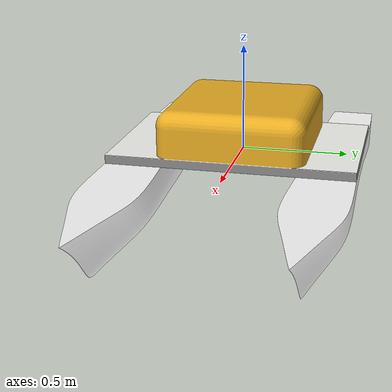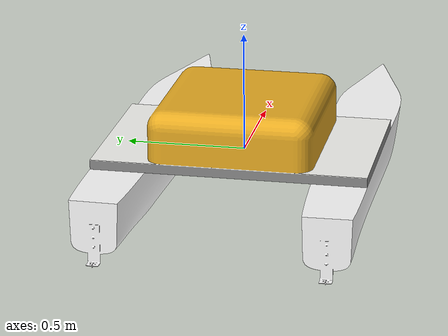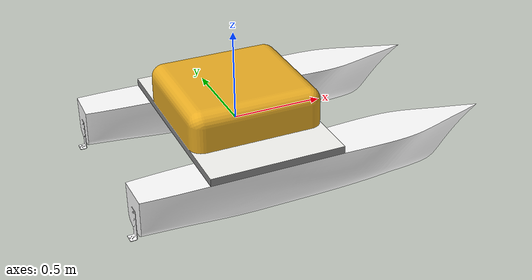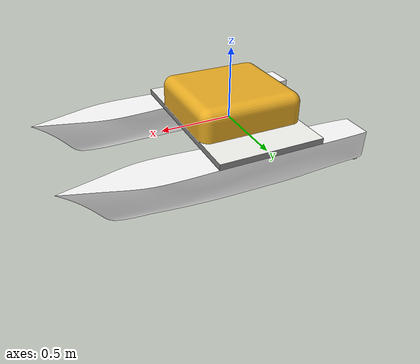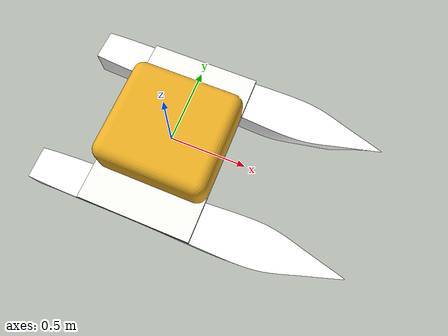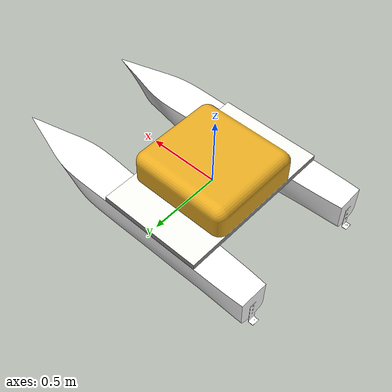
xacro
<?xml version="1.0"?>
<robot xmlns:xacro="http://www.ros.org/wiki/xacro" name="aidboat">

<link name="dummy">
</link>

<link name="base_link">
	<inertial>
		<mass value="9.7"/>
		<inertia ixx="0.3268889088" ixy="0" ixz="0" iyy="0.1452968093" iyz="0" izz="0.1452968093"/>
	</inertial>

	<collision>
		<origin xyz="0 0 0.1255" rpy="0 0 0"/>
		<geometry>
			<box size="0.73 1.15 0.251"/>
		</geometry>
	</collision>

	<visual>
		<origin rpy="0 0 0" xyz="0 0 0"/>
		<geometry>
			<mesh filename="package://aidboat_description/meshes/Base.dae"/>
		</geometry>
	</visual>
</link>

<joint name="dummy_joint" type="fixed">
	<parent link="dummy"/>
	<child link="base_link"/>
</joint>

<xacro:macro name="hulljoint" params="prefix reflect">
<joint name="base_to_${prefix}" type="fixed">
	<parent link="base_link" />
	<child link="${prefix}_link" />
	<origin xyz="0.172098 ${reflect*(0.447)} 0" rpy="0 0 0" />
</joint>
</xacro:macro>

<xacro:hulljoint prefix="hull1" reflect="1" />
<xacro:hulljoint prefix="hull2" reflect="-1" />

<xacro:macro name="hull" params="prefix reflect">
<link name="${prefix}_link">
	<inertial>
		<mass value="19.4"/>
		<inertia ixx="0.07803639653" ixy="0" ixz="0" iyy="2.168007709" iyz="0" izz="2.168007709" />
	</inertial>

	<collision>
		<origin xyz="0.1019 0 -0.146" rpy="0 0 ${reflect*(0.0244346)}" />
		<geometry>
			<box size="2.002 0.286 0.292" />
		</geometry>
	</collision>

	<visual>
		<origin rpy="0 0 ${reflect*(0.0244346)}" xyz="0 0 0" />
		<geometry>
			<mesh filename="package://aidboat_description/meshes/Hull.dae" />
		</geometry>
	</visual>
</link>
</xacro:macro>

<xacro:hull prefix="hull1" reflect="-1" />
<xacro:hull prefix="hull2" reflect="1" />

</robot>
